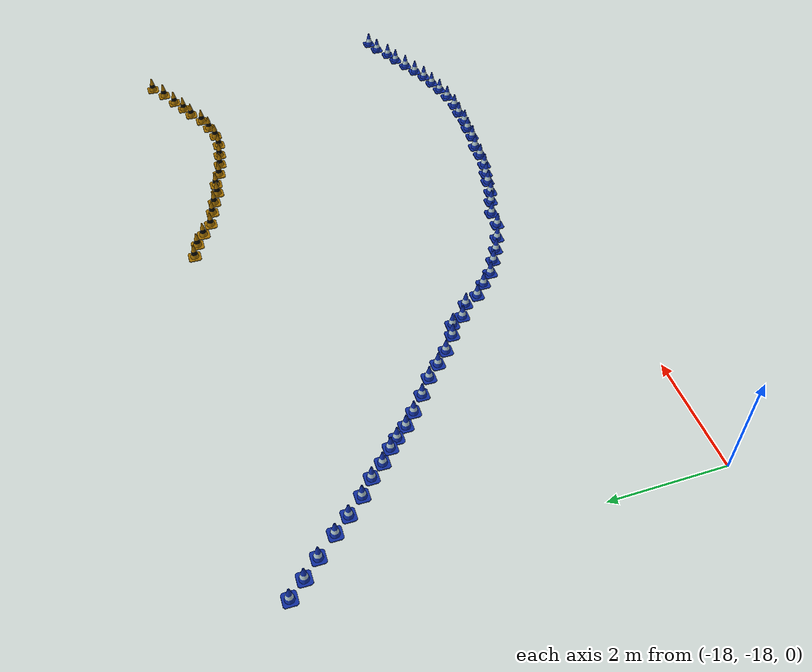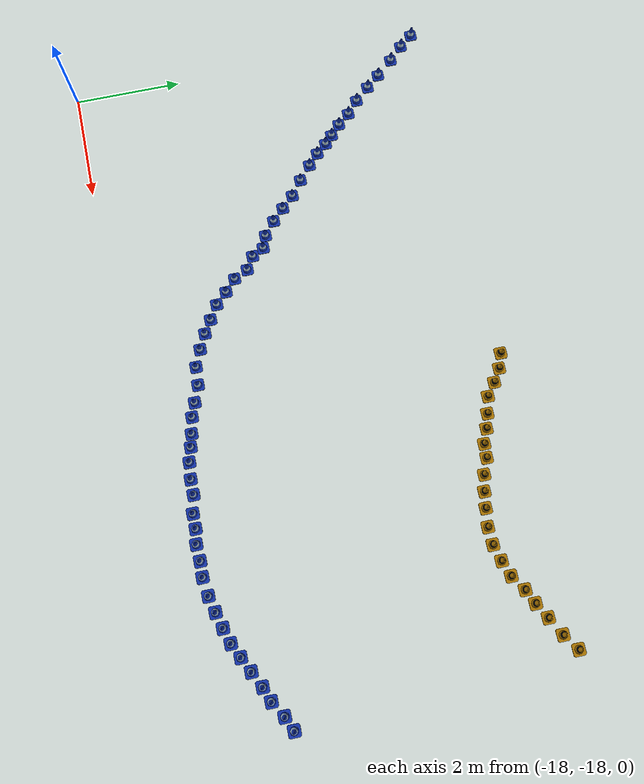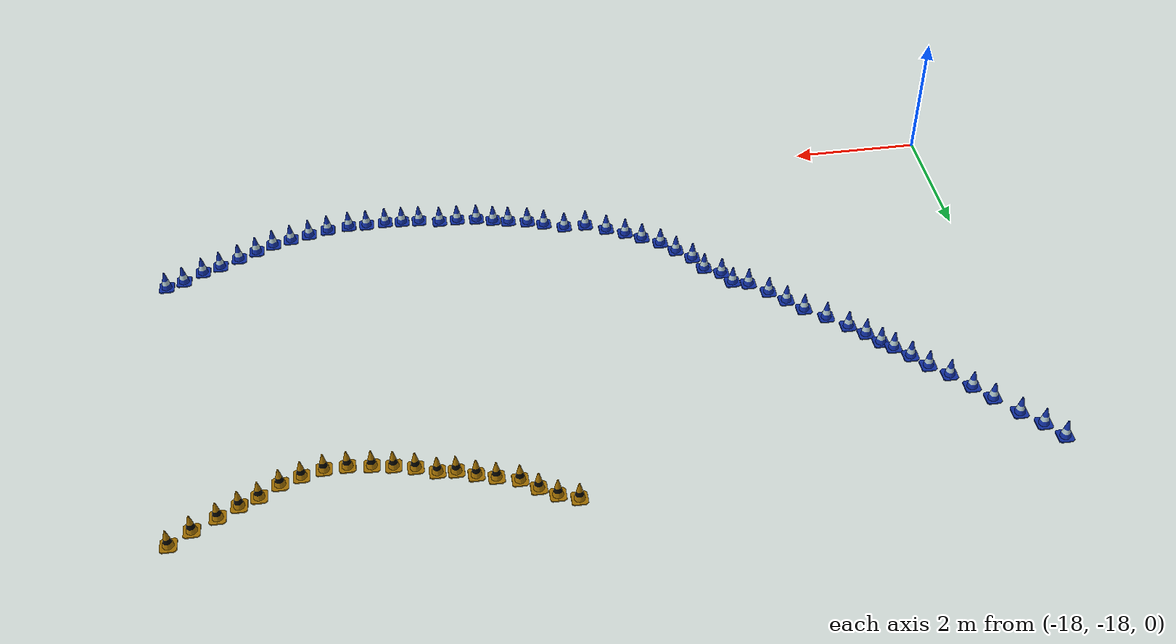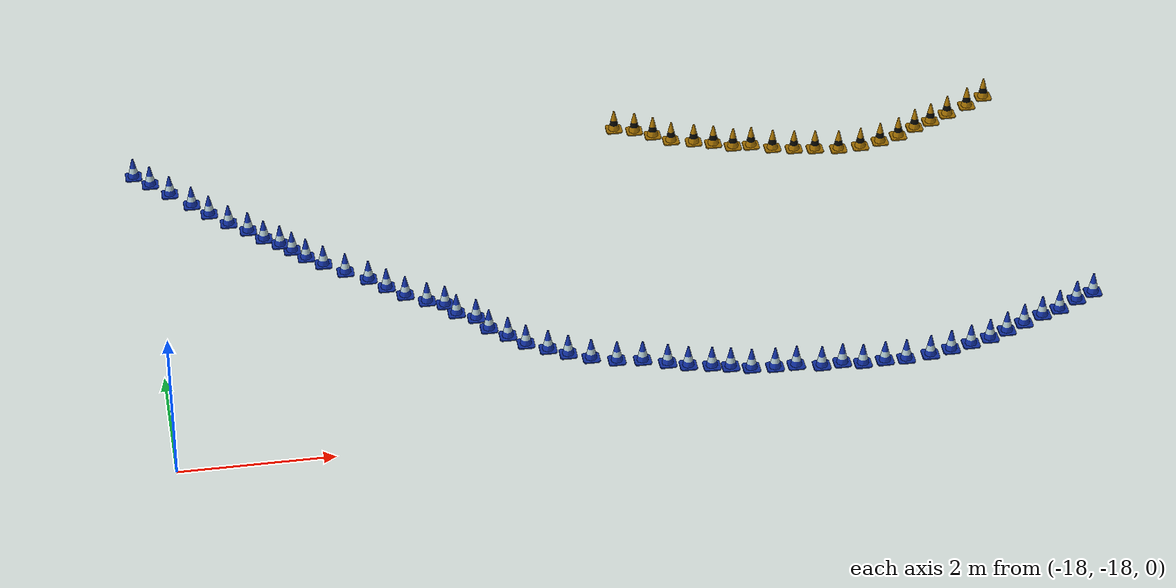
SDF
<sdf version="1.6">
 <model name="small_track">
  <link name="link_0_clone_0_clone_clone_clone_164">
   <pose>-6.04849 -11.1504 0.083534 0.001019 -0.000437 -0.000128</pose>
   <visual name="visual">
    <geometry><mesh><uri>model://eufs_description/meshes/cone_yellow.dae</uri></mesh></geometry>
    <material><shader type="pixel"/></material>
   </visual>
  </link>
  <link name="link_0_clone_0_clone_clone_clone_165">
   <pose>-6.33334 -11.349 0.083534 0.001019 -0.000437 -0.000128</pose>
   <visual name="visual">
    <geometry><mesh><uri>model://eufs_description/meshes/cone_yellow.dae</uri></mesh></geometry>
    <material><shader type="pixel"/></material>
   </visual>
  </link>
  <link name="link_0_clone_0_clone_clone_clone_166">
   <pose>-6.6563 -11.5203 0.083534 0.001019 -0.000437 -0.000128</pose>
   <visual name="visual">
    <geometry><mesh><uri>model://eufs_description/meshes/cone_yellow.dae</uri></mesh></geometry>
    <material><shader type="pixel"/></material>
   </visual>
  </link>
  <link name="link_0_clone_0_clone_clone_clone_167">
   <pose>-6.92883 -11.6734 0.083534 0.001019 -0.000437 -0.000128</pose>
   <visual name="visual">
    <geometry><mesh><uri>model://eufs_description/meshes/cone_yellow.dae</uri></mesh></geometry>
    <material><shader type="pixel"/></material>
   </visual>
  </link>
  <link name="link_0_clone_0_clone_clone_clone_168">
   <pose>-7.18545 -11.7903 0.083534 0.001019 -0.000437 -0.000128</pose>
   <visual name="visual">
    <geometry><mesh><uri>model://eufs_description/meshes/cone_yellow.dae</uri></mesh></geometry>
    <material><shader type="pixel"/></material>
   </visual>
  </link>
  <link name="link_0_clone_0_clone_clone_clone_169">
   <pose>-7.45671 -11.9667 0.083534 0.001019 -0.000437 -0.000128</pose>
   <visual name="visual">
    <geometry><mesh><uri>model://eufs_description/meshes/cone_yellow.dae</uri></mesh></geometry>
    <material><shader type="pixel"/></material>
   </visual>
  </link>
  <link name="link_0_clone_0_clone_clone_clone_170">
   <pose>-7.73912 -12.0653 0.083534 0.001019 -0.000437 -0.000128</pose>
   <visual name="visual">
    <geometry><mesh><uri>model://eufs_description/meshes/cone_yellow.dae</uri></mesh></geometry>
    <material><shader type="pixel"/></material>
   </visual>
  </link>
  <link name="link_0_clone_0_clone_clone_clone_171">
   <pose>-8.03568 -12.1432 0.083534 0.001019 -0.000437 -0.000128</pose>
   <visual name="visual">
    <geometry><mesh><uri>model://eufs_description/meshes/cone_yellow.dae</uri></mesh></geometry>
    <material><shader type="pixel"/></material>
   </visual>
  </link>
  <link name="link_0_clone_0_clone_clone_clone_172">
   <pose>-8.67258 -12.1122 0.083534 0.001019 -0.000437 -0.000128</pose>
   <visual name="visual">
    <geometry><mesh><uri>model://eufs_description/meshes/cone_yellow.dae</uri></mesh></geometry>
    <material><shader type="pixel"/></material>
   </visual>
  </link>
  <link name="link_0_clone_0_clone_clone_clone_173">
   <pose>-8.96112 -12.0641 0.083534 0.001019 -0.000437 -0.000128</pose>
   <visual name="visual">
    <geometry><mesh><uri>model://eufs_description/meshes/cone_yellow.dae</uri></mesh></geometry>
    <material><shader type="pixel"/></material>
   </visual>
  </link>
  <link name="link_0_clone_0_clone_clone_clone_174">
   <pose>-9.25112 -11.994 0.083534 0.001019 -0.000437 -0.000128</pose>
   <visual name="visual">
    <geometry><mesh><uri>model://eufs_description/meshes/cone_yellow.dae</uri></mesh></geometry>
    <material><shader type="pixel"/></material>
   </visual>
  </link>
  <link name="link_0_clone_0_clone_clone_clone_175">
   <pose>-9.53373 -11.8784 0.083534 0.001019 -0.000437 -0.000128</pose>
   <visual name="visual">
    <geometry><mesh><uri>model://eufs_description/meshes/cone_yellow.dae</uri></mesh></geometry>
    <material><shader type="pixel"/></material>
   </visual>
  </link>
  <link name="link_0_clone_0_clone_clone_clone_176">
   <pose>-10.044 -11.7524 0.083534 0.001019 -0.000437 -0.000128</pose>
   <visual name="visual">
    <geometry><mesh><uri>model://eufs_description/meshes/cone_yellow.dae</uri></mesh></geometry>
    <material><shader type="pixel"/></material>
   </visual>
  </link>
  <link name="link_0_clone_0_clone_clone_clone_177">
   <pose>-10.3058 -11.6686 0.083534 0.001019 -0.000437 -0.000128</pose>
   <visual name="visual">
    <geometry><mesh><uri>model://eufs_description/meshes/cone_yellow.dae</uri></mesh></geometry>
    <material><shader type="pixel"/></material>
   </visual>
  </link>
  <link name="link_0_clone_0_clone_clone_clone_178">
   <pose>-10.6108 -11.581 0.083534 0.001019 -0.000437 -0.000128</pose>
   <visual name="visual">
    <geometry><mesh><uri>model://eufs_description/meshes/cone_yellow.dae</uri></mesh></geometry>
    <material><shader type="pixel"/></material>
   </visual>
  </link>
  <link name="link_0_clone_0_clone_clone_clone_179">
   <pose>-10.8402 -11.4051 0.083534 0.001019 -0.000437 -0.000128</pose>
   <visual name="visual">
    <geometry><mesh><uri>model://eufs_description/meshes/cone_yellow.dae</uri></mesh></geometry>
    <material><shader type="pixel"/></material>
   </visual>
  </link>
  <link name="link_0_clone_0_clone_clone_clone_180">
   <pose>-11.076 -11.2538 0.083534 0.001019 -0.000437 -0.000128</pose>
   <visual name="visual">
    <geometry><mesh><uri>model://eufs_description/meshes/cone_yellow.dae</uri></mesh></geometry>
    <material><shader type="pixel"/></material>
   </visual>
  </link>
  <link name="link_0_clone_41">
   <pose>-5.74864 -16.1217 0.079001 0 -0 0</pose>
   <visual name="visual">
    <geometry><mesh><uri>model://eufs_description/meshes/cone_blue.dae</uri></mesh></geometry>
    <material><shader type="pixel"/></material>
   </visual>
  </link>
  <link name="link_0_clone_42">
   <pose>-8.34841 -12.1551 0.079001 0 -0 0</pose>
   <visual name="visual">
    <geometry><mesh><uri>model://eufs_description/meshes/cone_yellow.dae</uri></mesh></geometry>
    <material><shader type="pixel"/></material>
   </visual>
  </link>
  <link name="link_0_clone_43">
   <pose>-9.34841 -17.1551 0.079001 0 -0 0</pose>
   <visual name="visual">
    <geometry><mesh><uri>model://eufs_description/meshes/cone_blue.dae</uri></mesh></geometry>
    <material><shader type="pixel"/></material>
   </visual>
  </link>
  <link name="link_0_clone_44">
   <pose>-9.78487 -11.8592 0.079001 0 -0 0</pose>
   <visual name="visual">
    <geometry><mesh><uri>model://eufs_description/meshes/cone_yellow.dae</uri></mesh></geometry>
    <material><shader type="pixel"/></material>
   </visual>
  </link>
  <link name="link_0_clone_45">
   <pose>-12.2114 -16.6459 0.079001 0 -0 0</pose>
   <visual name="visual">
    <geometry><mesh><uri>model://eufs_description/meshes/cone_blue.dae</uri></mesh></geometry>
    <material><shader type="pixel"/></material>
   </visual>
  </link>
  <link name="link_0_clone_46">
   <pose>-11.3484 -11.1551 0.079001 0 -0 0</pose>
   <visual name="visual">
    <geometry><mesh><uri>model://eufs_description/meshes/cone_yellow.dae</uri></mesh></geometry>
    <material><shader type="pixel"/></material>
   </visual>
  </link>
  <link name="link_0_clone_47">
   <pose>-14.4625 -14.9249 0.079001 0 -0 0</pose>
   <visual name="visual">
    <geometry><mesh><uri>model://eufs_description/meshes/cone_blue.dae</uri></mesh></geometry>
    <material><shader type="pixel"/></material>
   </visual>
  </link>
  <link name="link_0_clone_48">
   <pose>-16.2427 -13.276 0.079001 0 -0 0</pose>
   <visual name="visual">
    <geometry><mesh><uri>model://eufs_description/meshes/cone_blue.dae</uri></mesh></geometry>
    <material><shader type="pixel"/></material>
   </visual>
  </link>
  <link name="link_0_clone_50">
   <pose>-17.8615 -11.5349 0.079001 0 -0 0</pose>
   <visual name="visual">
    <geometry><mesh><uri>model://eufs_description/meshes/cone_blue.dae</uri></mesh></geometry>
    <material><shader type="pixel"/></material>
   </visual>
  </link>
  <link name="link_0_clone_62_clone_255">
   <pose>-5.9997 -16.2353 0.063291 -0.001555 0.00019 -5.2e-05</pose>
   <visual name="visual">
    <geometry><mesh><uri>model://eufs_description/meshes/cone_blue.dae</uri></mesh></geometry>
    <material><shader type="pixel"/></material>
   </visual>
  </link>
  <link name="link_0_clone_62_clone_256">
   <pose>-6.27634 -16.4067 0.063291 -0.001555 0.00019 -5.2e-05</pose>
   <visual name="visual">
    <geometry><mesh><uri>model://eufs_description/meshes/cone_blue.dae</uri></mesh></geometry>
    <material><shader type="pixel"/></material>
   </visual>
  </link>
  <link name="link_0_clone_62_clone_257">
   <pose>-6.53398 -16.5071 0.063291 -0.001555 0.00019 -5.2e-05</pose>
   <visual name="visual">
    <geometry><mesh><uri>model://eufs_description/meshes/cone_blue.dae</uri></mesh></geometry>
    <material><shader type="pixel"/></material>
   </visual>
  </link>
  <link name="link_0_clone_62_clone_258">
   <pose>-6.81245 -16.6477 0.063291 -0.001555 0.00019 -5.2e-05</pose>
   <visual name="visual">
    <geometry><mesh><uri>model://eufs_description/meshes/cone_blue.dae</uri></mesh></geometry>
    <material><shader type="pixel"/></material>
   </visual>
  </link>
  <link name="link_0_clone_62_clone_259">
   <pose>-7.07604 -16.7794 0.063291 -0.001555 0.00019 -5.2e-05</pose>
   <visual name="visual">
    <geometry><mesh><uri>model://eufs_description/meshes/cone_blue.dae</uri></mesh></geometry>
    <material><shader type="pixel"/></material>
   </visual>
  </link>
  <link name="link_0_clone_62_clone_260">
   <pose>-7.33228 -16.903 0.063291 -0.001555 0.00019 -5.2e-05</pose>
   <visual name="visual">
    <geometry><mesh><uri>model://eufs_description/meshes/cone_blue.dae</uri></mesh></geometry>
    <material><shader type="pixel"/></material>
   </visual>
  </link>
  <link name="link_0_clone_62_clone_261">
   <pose>-7.60625 -16.9888 0.063291 -0.001555 0.00019 -5.2e-05</pose>
   <visual name="visual">
    <geometry><mesh><uri>model://eufs_description/meshes/cone_blue.dae</uri></mesh></geometry>
    <material><shader type="pixel"/></material>
   </visual>
  </link>
  <link name="link_0_clone_62_clone_262">
   <pose>-7.88843 -17.0673 0.063291 -0.001555 0.00019 -5.2e-05</pose>
   <visual name="visual">
    <geometry><mesh><uri>model://eufs_description/meshes/cone_blue.dae</uri></mesh></geometry>
    <material><shader type="pixel"/></material>
   </visual>
  </link>
  <link name="link_0_clone_62_clone_263">
   <pose>-8.17875 -17.1388 0.063291 -0.001555 0.00019 -5.2e-05</pose>
   <visual name="visual">
    <geometry><mesh><uri>model://eufs_description/meshes/cone_blue.dae</uri></mesh></geometry>
    <material><shader type="pixel"/></material>
   </visual>
  </link>
  <link name="link_0_clone_62_clone_264">
   <pose>-8.50948 -17.1817 0.063291 -0.001555 0.00019 -5.2e-05</pose>
   <visual name="visual">
    <geometry><mesh><uri>model://eufs_description/meshes/cone_blue.dae</uri></mesh></geometry>
    <material><shader type="pixel"/></material>
   </visual>
  </link>
  <link name="link_0_clone_62_clone_265">
   <pose>-8.78886 -17.1748 0.063291 -0.001555 0.00019 -5.2e-05</pose>
   <visual name="visual">
    <geometry><mesh><uri>model://eufs_description/meshes/cone_blue.dae</uri></mesh></geometry>
    <material><shader type="pixel"/></material>
   </visual>
  </link>
  <link name="link_0_clone_62_clone_266">
   <pose>-9.08246 -17.1919 0.063291 -0.001555 0.00019 -5.2e-05</pose>
   <visual name="visual">
    <geometry><mesh><uri>model://eufs_description/meshes/cone_blue.dae</uri></mesh></geometry>
    <material><shader type="pixel"/></material>
   </visual>
  </link>
  <link name="link_0_clone_62_clone_267">
   <pose>-9.61772 -17.1574 0.063291 -0.001555 0.00019 -5.2e-05</pose>
   <visual name="visual">
    <geometry><mesh><uri>model://eufs_description/meshes/cone_blue.dae</uri></mesh></geometry>
    <material><shader type="pixel"/></material>
   </visual>
  </link>
  <link name="link_0_clone_62_clone_268">
   <pose>-9.93929 -17.091 0.063291 -0.001555 0.00019 -5.2e-05</pose>
   <visual name="visual">
    <geometry><mesh><uri>model://eufs_description/meshes/cone_blue.dae</uri></mesh></geometry>
    <material><shader type="pixel"/></material>
   </visual>
  </link>
  <link name="link_0_clone_62_clone_269">
   <pose>-10.2183 -17.092 0.063291 -0.001555 0.00019 -5.2e-05</pose>
   <visual name="visual">
    <geometry><mesh><uri>model://eufs_description/meshes/cone_blue.dae</uri></mesh></geometry>
    <material><shader type="pixel"/></material>
   </visual>
  </link>
  <link name="link_0_clone_62_clone_270">
   <pose>-10.5224 -17.0635 0.063291 -0.001555 0.00019 -5.2e-05</pose>
   <visual name="visual">
    <geometry><mesh><uri>model://eufs_description/meshes/cone_blue.dae</uri></mesh></geometry>
    <material><shader type="pixel"/></material>
   </visual>
  </link>
  <link name="link_0_clone_62_clone_271">
   <pose>-10.7822 -16.9933 0.063291 -0.001555 0.00019 -5.2e-05</pose>
   <visual name="visual">
    <geometry><mesh><uri>model://eufs_description/meshes/cone_blue.dae</uri></mesh></geometry>
    <material><shader type="pixel"/></material>
   </visual>
  </link>
  <link name="link_0_clone_62_clone_272">
   <pose>-11.0179 -16.9374 0.063291 -0.001555 0.00019 -5.2e-05</pose>
   <visual name="visual">
    <geometry><mesh><uri>model://eufs_description/meshes/cone_blue.dae</uri></mesh></geometry>
    <material><shader type="pixel"/></material>
   </visual>
  </link>
  <link name="link_0_clone_62_clone_273">
   <pose>-11.3161 -16.8774 0.063291 -0.001555 0.00019 -5.2e-05</pose>
   <visual name="visual">
    <geometry><mesh><uri>model://eufs_description/meshes/cone_blue.dae</uri></mesh></geometry>
    <material><shader type="pixel"/></material>
   </visual>
  </link>
  <link name="link_0_clone_62_clone_274">
   <pose>-11.5695 -16.7839 0.063291 -0.001555 0.00019 -5.2e-05</pose>
   <visual name="visual">
    <geometry><mesh><uri>model://eufs_description/meshes/cone_blue.dae</uri></mesh></geometry>
    <material><shader type="pixel"/></material>
   </visual>
  </link>
  <link name="link_0_clone_62_clone_275">
   <pose>-11.8786 -16.6704 0.063291 -0.001555 0.00019 -5.2e-05</pose>
   <visual name="visual">
    <geometry><mesh><uri>model://eufs_description/meshes/cone_blue.dae</uri></mesh></geometry>
    <material><shader type="pixel"/></material>
   </visual>
  </link>
  <link name="link_0_clone_62_clone_276">
   <pose>-12.5271 -16.5165 0.063291 -0.001555 0.00019 -5.2e-05</pose>
   <visual name="visual">
    <geometry><mesh><uri>model://eufs_description/meshes/cone_blue.dae</uri></mesh></geometry>
    <material><shader type="pixel"/></material>
   </visual>
  </link>
  <link name="link_0_clone_62_clone_277">
   <pose>-12.8064 -16.378 0.063291 -0.001555 0.00019 -5.2e-05</pose>
   <visual name="visual">
    <geometry><mesh><uri>model://eufs_description/meshes/cone_blue.dae</uri></mesh></geometry>
    <material><shader type="pixel"/></material>
   </visual>
  </link>
  <link name="link_0_clone_62_clone_278">
   <pose>-13.0477 -16.2294 0.063291 -0.001555 0.00019 -5.2e-05</pose>
   <visual name="visual">
    <geometry><mesh><uri>model://eufs_description/meshes/cone_blue.dae</uri></mesh></geometry>
    <material><shader type="pixel"/></material>
   </visual>
  </link>
  <link name="link_0_clone_62_clone_279">
   <pose>-13.3129 -16.0667 0.063291 -0.001555 0.00019 -5.2e-05</pose>
   <visual name="visual">
    <geometry><mesh><uri>model://eufs_description/meshes/cone_blue.dae</uri></mesh></geometry>
    <material><shader type="pixel"/></material>
   </visual>
  </link>
  <link name="link_0_clone_62_clone_280">
   <pose>-13.5193 -15.8541 0.063291 -0.001555 0.00019 -5.2e-05</pose>
   <visual name="visual">
    <geometry><mesh><uri>model://eufs_description/meshes/cone_blue.dae</uri></mesh></geometry>
    <material><shader type="pixel"/></material>
   </visual>
  </link>
  <link name="link_0_clone_62_clone_281">
   <pose>-13.7406 -15.65 0.063291 -0.001555 0.00019 -5.2e-05</pose>
   <visual name="visual">
    <geometry><mesh><uri>model://eufs_description/meshes/cone_blue.dae</uri></mesh></geometry>
    <material><shader type="pixel"/></material>
   </visual>
  </link>
  <link name="link_0_clone_62_clone_282">
   <pose>-13.8721 -15.3867 0.063291 -0.001555 0.00019 -5.2e-05</pose>
   <visual name="visual">
    <geometry><mesh><uri>model://eufs_description/meshes/cone_blue.dae</uri></mesh></geometry>
    <material><shader type="pixel"/></material>
   </visual>
  </link>
  <link name="link_0_clone_62_clone_283">
   <pose>-14.1134 -15.2381 0.063291 -0.001555 0.00019 -5.2e-05</pose>
   <visual name="visual">
    <geometry><mesh><uri>model://eufs_description/meshes/cone_blue.dae</uri></mesh></geometry>
    <material><shader type="pixel"/></material>
   </visual>
  </link>
  <link name="link_0_clone_62_clone_284">
   <pose>-14.2361 -15.013 0.063291 -0.001555 0.00019 -5.2e-05</pose>
   <visual name="visual">
    <geometry><mesh><uri>model://eufs_description/meshes/cone_blue.dae</uri></mesh></geometry>
    <material><shader type="pixel"/></material>
   </visual>
  </link>
  <link name="link_0_clone_62_clone_285">
   <pose>-14.7264 -14.7163 0.063291 -0.001555 0.00019 -5.2e-05</pose>
   <visual name="visual">
    <geometry><mesh><uri>model://eufs_description/meshes/cone_blue.dae</uri></mesh></geometry>
    <material><shader type="pixel"/></material>
   </visual>
  </link>
  <link name="link_0_clone_62_clone_286">
   <pose>-14.9484 -14.4971 0.063291 -0.001555 0.00019 -5.2e-05</pose>
   <visual name="visual">
    <geometry><mesh><uri>model://eufs_description/meshes/cone_blue.dae</uri></mesh></geometry>
    <material><shader type="pixel"/></material>
   </visual>
  </link>
  <link name="link_0_clone_62_clone_287">
   <pose>-15.1633 -14.2694 0.063291 -0.001555 0.00019 -5.2e-05</pose>
   <visual name="visual">
    <geometry><mesh><uri>model://eufs_description/meshes/cone_blue.dae</uri></mesh></geometry>
    <material><shader type="pixel"/></material>
   </visual>
  </link>
  <link name="link_0_clone_62_clone_288">
   <pose>-15.4472 -14.0536 0.063291 -0.001555 0.00019 -5.2e-05</pose>
   <visual name="visual">
    <geometry><mesh><uri>model://eufs_description/meshes/cone_blue.dae</uri></mesh></geometry>
    <material><shader type="pixel"/></material>
   </visual>
  </link>
  <link name="link_0_clone_62_clone_289">
   <pose>-15.7165 -13.8216 0.063291 -0.001555 0.00019 -5.2e-05</pose>
   <visual name="visual">
    <geometry><mesh><uri>model://eufs_description/meshes/cone_blue.dae</uri></mesh></geometry>
    <material><shader type="pixel"/></material>
   </visual>
  </link>
  <link name="link_0_clone_62_clone_290">
   <pose>-15.9295 -13.6249 0.063291 -0.001555 0.00019 -5.2e-05</pose>
   <visual name="visual">
    <geometry><mesh><uri>model://eufs_description/meshes/cone_blue.dae</uri></mesh></geometry>
    <material><shader type="pixel"/></material>
   </visual>
  </link>
  <link name="link_0_clone_62_clone_291">
   <pose>-16.0963 -13.4254 0.063291 -0.001555 0.00019 -5.2e-05</pose>
   <visual name="visual">
    <geometry><mesh><uri>model://eufs_description/meshes/cone_blue.dae</uri></mesh></geometry>
    <material><shader type="pixel"/></material>
   </visual>
  </link>
  <link name="link_0_clone_62_clone_292">
   <pose>-16.4443 -13.0894 0.063291 -0.001555 0.00019 -5.2e-05</pose>
   <visual name="visual">
    <geometry><mesh><uri>model://eufs_description/meshes/cone_blue.dae</uri></mesh></geometry>
    <material><shader type="pixel"/></material>
   </visual>
  </link>
  <link name="link_0_clone_62_clone_293">
   <pose>-16.6361 -12.8606 0.063291 -0.001555 0.00019 -5.2e-05</pose>
   <visual name="visual">
    <geometry><mesh><uri>model://eufs_description/meshes/cone_blue.dae</uri></mesh></geometry>
    <material><shader type="pixel"/></material>
   </visual>
  </link>
  <link name="link_0_clone_62_clone_294">
   <pose>-16.8811 -12.6426 0.063291 -0.001555 0.00019 -5.2e-05</pose>
   <visual name="visual">
    <geometry><mesh><uri>model://eufs_description/meshes/cone_blue.dae</uri></mesh></geometry>
    <material><shader type="pixel"/></material>
   </visual>
  </link>
  <link name="link_0_clone_62_clone_295">
   <pose>-17.1221 -12.37 0.063291 -0.001555 0.00019 -5.2e-05</pose>
   <visual name="visual">
    <geometry><mesh><uri>model://eufs_description/meshes/cone_blue.dae</uri></mesh></geometry>
    <material><shader type="pixel"/></material>
   </visual>
  </link>
  <link name="link_0_clone_62_clone_296">
   <pose>-17.3386 -12.1116 0.063291 -0.001555 0.00019 -5.2e-05</pose>
   <visual name="visual">
    <geometry><mesh><uri>model://eufs_description/meshes/cone_blue.dae</uri></mesh></geometry>
    <material><shader type="pixel"/></material>
   </visual>
  </link>
  <link name="link_0_clone_62_clone_297">
   <pose>-17.6128 -11.7947 0.063291 -0.001555 0.00019 -5.2e-05</pose>
   <visual name="visual">
    <geometry><mesh><uri>model://eufs_description/meshes/cone_blue.dae</uri></mesh></geometry>
    <material><shader type="pixel"/></material>
   </visual>
  </link>
  <link name="link_0_clone_62_clone_298">
   <pose>-18.0733 -11.2801 0.063291 -0.001555 0.00019 -5.2e-05</pose>
   <visual name="visual">
    <geometry><mesh><uri>model://eufs_description/meshes/cone_blue.dae</uri></mesh></geometry>
    <material><shader type="pixel"/></material>
   </visual>
  </link>
  <static>1</static>
 </model>
</sdf>
